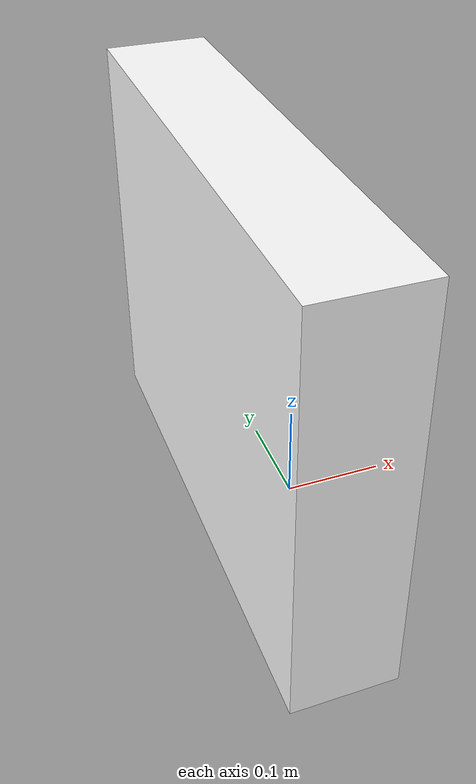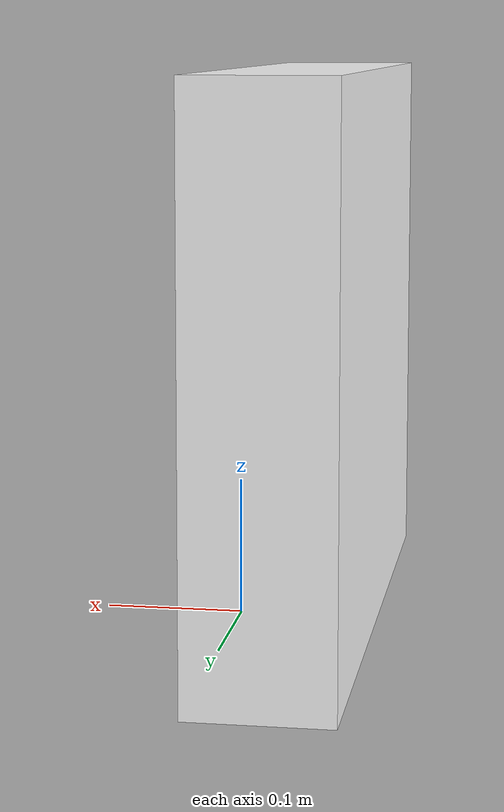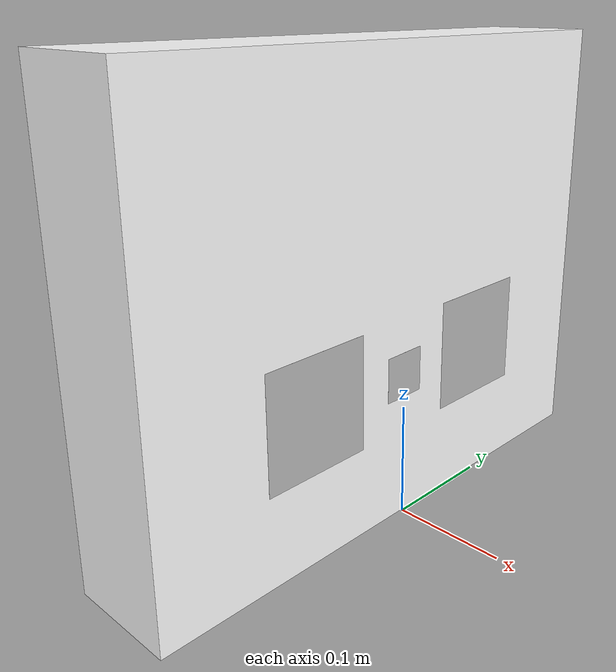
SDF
<?xml version='1.0'?>
<sdf version='1.6'>
  <model name='MiniMockCharger'>
    <allow_auto_disable>0</allow_auto_disable>
    <static>0</static>

    <!-- Charger Base: Offset to make sure origin is at bottom center-->
    <link name='charger_base'>
      <pose> -0.051 0 0.2 0 0 0</pose>

      <collision name='collision'>
        <geometry>
          <box>
            <size>.1 .5 0.4</size>
          </box>
        </geometry>
      </collision>

      <visual name='visual'>
        <geometry>
          <box>
            <size>.1 .5 0.4</size>
          </box>
        </geometry>
        <material>
          <ambient>.8 1 1 1</ambient>
          <diffuse>1 1 1 1</diffuse>
          <specular>0.1 0.1 0.1 1</specular>
          <emissive>0.3 0.3 0.3 0</emissive>
        </material>
      </visual>
    </link>

    <!-- Offset -10cm from centre-->
    <link name='left_marker'>
      <pose> 0 -0.1 0.13 -0 -1.57 3.14</pose>
      <visual name='visual'>
        <geometry>
          <box>
            <size>0.1 0.1 1e-5</size>
          </box>
        </geometry>
        <material>
          <script>
            <uri>model://Fiducial10/materials/scripts</uri>
            <uri>model://Fiducial10/materials/textures</uri>
            <name>Fiducial10/Marker</name>
          </script>
          <specular>0 0 0 1</specular>
          <emissive>1 1 1 0</emissive>
        </material>
      </visual>
    </link>

    <link name='centre_marker'>
      <pose> 0 0 0.13 -0 -1.57 3.14</pose>
      <visual name='visual'>
        <geometry>
          <box>
            <size>0.04 0.04 1e-5</size>
          </box>
        </geometry>
        <material>
          <script>
            <uri>model://Fiducial20/materials/scripts</uri>
            <uri>model://Fiducial20/materials/textures</uri>
            <name>Fiducial20/Marker</name>
          </script>
          <specular>0 0 0 1</specular>
          <emissive>1 1 1 0</emissive>
        </material>
      </visual>
    </link>

    <!-- Offset +10cm from centre-->
    <link name='right_marker'>
      <pose> 0 0.1 0.13 -0 -1.57 3.14</pose>
      <visual name='visual'>
        <geometry>
          <box>
            <size>0.1 0.1 1e-5</size>
          </box>
        </geometry>
        <material>
          <script>
            <uri>model://Fiducial11/materials/scripts</uri>
            <uri>model://Fiducial11/materials/textures</uri>
            <name>Fiducial11/Marker</name>
          </script>
          <specular>0 0 0 1</specular>
          <emissive>1 1 1 0</emissive>
        </material>
      </visual>
    </link>

    <joint name="aruco_tag_joint1" type="fixed">
      <parent>charger_base</parent>
      <child>left_marker</child>
    </joint>

    <joint name="aruco_tag_joint2" type="fixed">
      <parent>charger_base</parent>
      <child>centre_marker</child>
    </joint>

    <joint name="aruco_tag_joint3" type="fixed">
      <parent>charger_base</parent>
      <child>right_marker</child>
    </joint>

    <joint name="charger_contact_joint" type="fixed">
      <parent>charger_base</parent>
      <child>charger_contact</child>
    </joint>
  </model>
</sdf>
